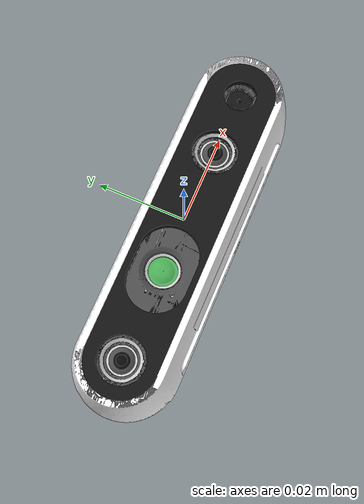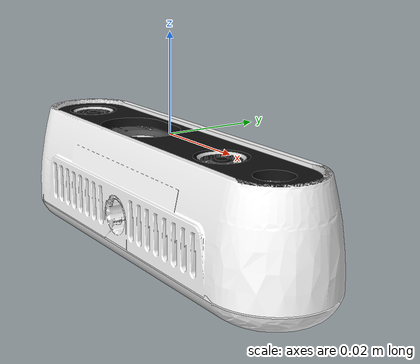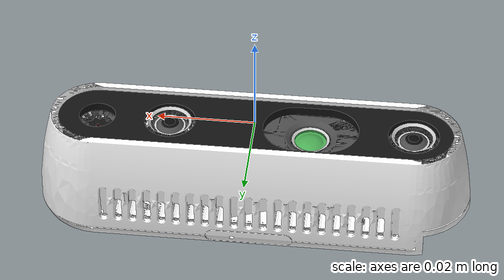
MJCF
<mujoco model="d435i">
  <compiler meshdir="../obj" fitaabb="true"/>

  <visual>
    <global azimuth="90" elevation="-90"/>
  </visual>

  <default>
    <default class="d435i">
      <material specular="0" shininess="0.25"/>
      <default class="visual">
        <geom group="2" type="mesh" contype="0" conaffinity="0" mass="0"/>
      </default>
      <default class="collision">
        <geom group="3" type="mesh" mass="0"/>
      </default>
    </default>
  </default>

  <asset>
    <material class="d435i" name="Black_Acrylic" rgba="0.070360 0.070360 0.070360 1"/>
    <material class="d435i" name="Cameras_Gray" rgba="0.296138 0.296138 0.296138 1"/>
    <material class="d435i" name="IR_Emitter_Lens" rgba="0.287440 0.665387 0.327778 1"/>
    <material class="d435i" name="IR_Lens" rgba="0.035601 0.035601 0.035601 1"/>
    <material class="d435i" name="IR_Rim" rgba="0.799102 0.806952 0.799103 1"/>
    <material class="d435i" name="Metal_Casing" rgba="1 1 1 1"/>
    <material class="d435i" name="RGB_Pupil" rgba="0.087140 0.002866 0.009346 1"/>

    <mesh file="d435i_0.obj"/>
    <mesh file="d435i_1.obj"/>
    <mesh file="d435i_2.obj"/>
    <mesh file="d435i_3.obj"/>
    <mesh file="d435i_4.obj"/>
    <mesh file="d435i_5.obj"/>
    <mesh file="d435i_6.obj"/>
    <mesh file="d435i_7.obj"/>
    <mesh file="d435i_8.obj"/>
  </asset>

  <worldbody>
    <light pos="0 0 1.5" dir="0 0 -1" directional="true"/>
    <body name="d435i" childclass="d435i">
      <geom mesh="d435i_0" material="IR_Lens" class="visual"/>
      <geom mesh="d435i_1" material="IR_Emitter_Lens" class="visual"/>
      <geom mesh="d435i_2" material="IR_Rim" class="visual"/>
      <geom mesh="d435i_3" material="IR_Lens" class="visual"/>
      <geom mesh="d435i_4" material="Cameras_Gray" class="visual"/>
      <geom mesh="d435i_5" material="Black_Acrylic" class="visual"/>
      <geom mesh="d435i_6" material="Black_Acrylic" class="visual"/>
      <geom mesh="d435i_7" material="RGB_Pupil" class="visual"/>
      <geom mesh="d435i_8" mass="0.072" material="Metal_Casing" class="visual"/>
      <geom class="collision" type="capsule" mesh="d435i_8"/>
      <!-- camera offset can be lookup on the datasheet on page 96: https://www.intelrealsense.com/wp-content/uploads/2024/10/Intel-RealSense-D400-Series-Datasheet-October-2024.pdf -->
      <camera name="wrist_0" mode="fixed" pos="0.0325 0 0" euler="0 180 0" resolution="1920 1080"/>
    </body>
  </worldbody>
</mujoco>
